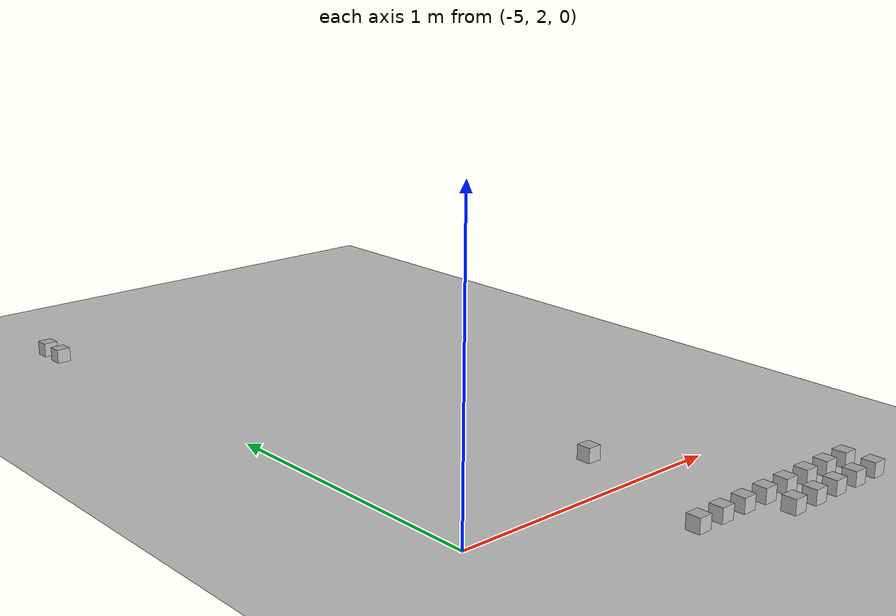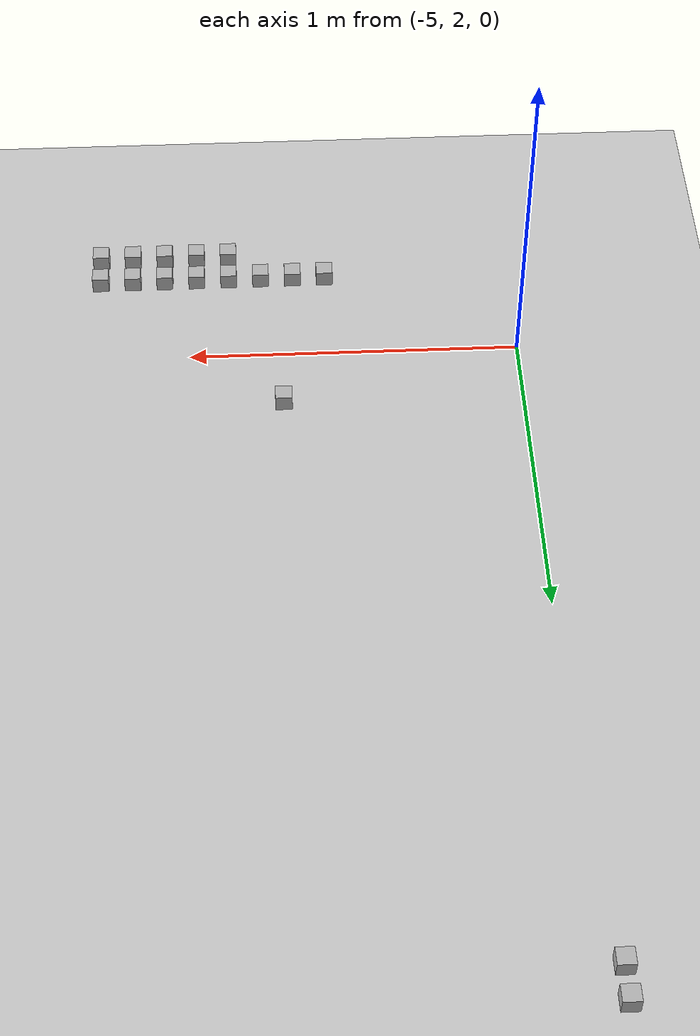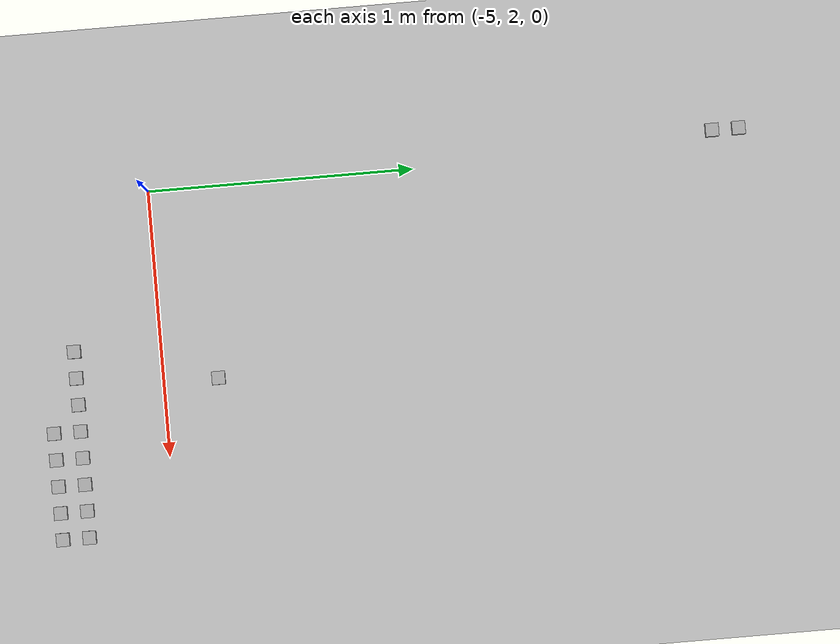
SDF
<sdf version="1.6">
 <world name="default">
  <model name="ground_plane">
   <static>1</static>
   <link name="link">
    <collision name="collision">
     <geometry><plane><normal>0 0 1</normal><size>100 100</size></plane></geometry>
     <surface><friction><ode><mu>100</mu><mu2>50</mu2></ode></friction></surface>
    </collision>
    <visual name="visual">
     <cast_shadows>0</cast_shadows>
     <geometry><plane><normal>0 0 1</normal><size>100 100</size></plane></geometry>
     <material>
      <script><uri>file://media/materials/scripts/gazebo.material</uri><name>Gazebo/Grey</name></script>
     </material>
    </visual>
   </link>
  </model>
  <model name="at19">
   <static>0</static>
   <link name="link">
    <inertial>
     <mass>0.01</mass>
     <inertia><ixx>4e-05</ixx><ixy>0</ixy><ixz>0</ixz><iyy>4e-05</iyy><iyz>0</iyz><izz>4e-05</izz></inertia>
    </inertial>
    <visual name="visual">
     <geometry><box><size>0.05 0.05 0.05</size></box></geometry>
     <material>
      <script>
       <uri>model://at0/materials/scripts</uri>
       <uri>model://at0/materials/textures</uri>
       <name>at0/Diffuse</name>
      </script>
     </material>
    </visual>
    <collision name="collision">
     <geometry><box><size>0.05 0.05 0.05</size></box></geometry>
     <surface><friction><ode><mu>0.8</mu><mu2>0.7</mu2></ode></friction></surface>
    </collision>
   </link>
   <pose>-4.12244 1.57302 0.025 0 -0 0</pose>
  </model>
  <model name="at20">
   <static>0</static>
   <link name="link">
    <inertial>
     <mass>0.01</mass>
     <inertia><ixx>4e-05</ixx><ixy>0</ixy><ixz>0</ixz><iyy>4e-05</iyy><iyz>0</iyz><izz>4e-05</izz></inertia>
    </inertial>
    <visual name="visual">
     <geometry><box><size>0.05 0.05 0.05</size></box></geometry>
     <material>
      <script>
       <uri>model://at0/materials/scripts</uri>
       <uri>model://at0/materials/textures</uri>
       <name>at0/Diffuse</name>
      </script>
     </material>
    </visual>
    <collision name="collision">
     <geometry><box><size>0.05 0.05 0.05</size></box></geometry>
     <surface><friction><ode><mu>0.8</mu><mu2>0.7</mu2></ode></friction></surface>
    </collision>
   </link>
   <pose>-4.02244 1.57302 0.025 0 -0 0</pose>
  </model>
  <model name="at21">
   <static>0</static>
   <link name="link">
    <inertial>
     <mass>0.01</mass>
     <inertia><ixx>4e-05</ixx><ixy>0</ixy><ixz>0</ixz><iyy>4e-05</iyy><iyz>0</iyz><izz>4e-05</izz></inertia>
    </inertial>
    <visual name="visual">
     <geometry><box><size>0.05 0.05 0.05</size></box></geometry>
     <material>
      <script>
       <uri>model://at0/materials/scripts</uri>
       <uri>model://at0/materials/textures</uri>
       <name>at0/Diffuse</name>
      </script>
     </material>
    </visual>
    <collision name="collision">
     <geometry><box><size>0.05 0.05 0.05</size></box></geometry>
     <surface><friction><ode><mu>0.8</mu><mu2>0.7</mu2></ode></friction></surface>
    </collision>
   </link>
   <pose>-3.92244 1.57302 0.025 0 -0 0</pose>
  </model>
  <model name="at22">
   <static>0</static>
   <link name="link">
    <inertial>
     <mass>0.01</mass>
     <inertia><ixx>4e-05</ixx><ixy>0</ixy><ixz>0</ixz><iyy>4e-05</iyy><iyz>0</iyz><izz>4e-05</izz></inertia>
    </inertial>
    <visual name="visual">
     <geometry><box><size>0.05 0.05 0.05</size></box></geometry>
     <material>
      <script>
       <uri>model://at0/materials/scripts</uri>
       <uri>model://at0/materials/textures</uri>
       <name>at0/Diffuse</name>
      </script>
     </material>
    </visual>
    <collision name="collision">
     <geometry><box><size>0.05 0.05 0.05</size></box></geometry>
     <surface><friction><ode><mu>0.8</mu><mu2>0.7</mu2></ode></friction></surface>
    </collision>
   </link>
   <pose>-3.82244 1.57302 0.025 0 -0 0</pose>
  </model>
  <model name="at23">
   <static>0</static>
   <link name="link">
    <inertial>
     <mass>0.01</mass>
     <inertia><ixx>4e-05</ixx><ixy>0</ixy><ixz>0</ixz><iyy>4e-05</iyy><iyz>0</iyz><izz>4e-05</izz></inertia>
    </inertial>
    <visual name="visual">
     <geometry><box><size>0.05 0.05 0.05</size></box></geometry>
     <material>
      <script>
       <uri>model://at0/materials/scripts</uri>
       <uri>model://at0/materials/textures</uri>
       <name>at0/Diffuse</name>
      </script>
     </material>
    </visual>
    <collision name="collision">
     <geometry><box><size>0.05 0.05 0.05</size></box></geometry>
     <surface><friction><ode><mu>0.8</mu><mu2>0.7</mu2></ode></friction></surface>
    </collision>
   </link>
   <pose>-3.72244 1.57302 0.025 0 -0 0</pose>
  </model>
  <model name="at24">
   <static>0</static>
   <link name="link">
    <inertial>
     <mass>0.01</mass>
     <inertia><ixx>4e-05</ixx><ixy>0</ixy><ixz>0</ixz><iyy>4e-05</iyy><iyz>0</iyz><izz>4e-05</izz></inertia>
    </inertial>
    <visual name="visual">
     <geometry><box><size>0.05 0.05 0.05</size></box></geometry>
     <material>
      <script>
       <uri>model://at0/materials/scripts</uri>
       <uri>model://at0/materials/textures</uri>
       <name>at0/Diffuse</name>
      </script>
     </material>
    </visual>
    <collision name="collision">
     <geometry><box><size>0.05 0.05 0.05</size></box></geometry>
     <surface><friction><ode><mu>0.8</mu><mu2>0.7</mu2></ode></friction></surface>
    </collision>
   </link>
   <pose>-4.42244 1.67302 0.025 0 -0 0</pose>
  </model>
  <model name="at25">
   <static>0</static>
   <link name="link">
    <inertial>
     <mass>0.01</mass>
     <inertia><ixx>4e-05</ixx><ixy>0</ixy><ixz>0</ixz><iyy>4e-05</iyy><iyz>0</iyz><izz>4e-05</izz></inertia>
    </inertial>
    <visual name="visual">
     <geometry><box><size>0.05 0.05 0.05</size></box></geometry>
     <material>
      <script>
       <uri>model://at0/materials/scripts</uri>
       <uri>model://at0/materials/textures</uri>
       <name>at0/Diffuse</name>
      </script>
     </material>
    </visual>
    <collision name="collision">
     <geometry><box><size>0.05 0.05 0.05</size></box></geometry>
     <surface><friction><ode><mu>0.8</mu><mu2>0.7</mu2></ode></friction></surface>
    </collision>
   </link>
   <pose>-4.32244 1.67302 0.025 0 -0 0</pose>
  </model>
  <model name="at26">
   <static>0</static>
   <link name="link">
    <inertial>
     <mass>0.01</mass>
     <inertia><ixx>4e-05</ixx><ixy>0</ixy><ixz>0</ixz><iyy>4e-05</iyy><iyz>0</iyz><izz>4e-05</izz></inertia>
    </inertial>
    <visual name="visual">
     <geometry><box><size>0.05 0.05 0.05</size></box></geometry>
     <material>
      <script>
       <uri>model://at0/materials/scripts</uri>
       <uri>model://at0/materials/textures</uri>
       <name>at0/Diffuse</name>
      </script>
     </material>
    </visual>
    <collision name="collision">
     <geometry><box><size>0.05 0.05 0.05</size></box></geometry>
     <surface><friction><ode><mu>0.8</mu><mu2>0.7</mu2></ode></friction></surface>
    </collision>
   </link>
   <pose>-4.22244 1.67302 0.025 0 -0 0</pose>
  </model>
  <model name="at27">
   <static>0</static>
   <link name="link">
    <inertial>
     <mass>0.01</mass>
     <inertia><ixx>4e-05</ixx><ixy>0</ixy><ixz>0</ixz><iyy>4e-05</iyy><iyz>0</iyz><izz>4e-05</izz></inertia>
    </inertial>
    <visual name="visual">
     <geometry><box><size>0.05 0.05 0.05</size></box></geometry>
     <material>
      <script>
       <uri>model://at0/materials/scripts</uri>
       <uri>model://at0/materials/textures</uri>
       <name>at0/Diffuse</name>
      </script>
     </material>
    </visual>
    <collision name="collision">
     <geometry><box><size>0.05 0.05 0.05</size></box></geometry>
     <surface><friction><ode><mu>0.8</mu><mu2>0.7</mu2></ode></friction></surface>
    </collision>
   </link>
   <pose>-4.12244 1.67302 0.025 0 -0 0</pose>
  </model>
  <model name="at28">
   <static>0</static>
   <link name="link">
    <inertial>
     <mass>0.01</mass>
     <inertia><ixx>4e-05</ixx><ixy>0</ixy><ixz>0</ixz><iyy>4e-05</iyy><iyz>0</iyz><izz>4e-05</izz></inertia>
    </inertial>
    <visual name="visual">
     <geometry><box><size>0.05 0.05 0.05</size></box></geometry>
     <material>
      <script>
       <uri>model://at0/materials/scripts</uri>
       <uri>model://at0/materials/textures</uri>
       <name>at0/Diffuse</name>
      </script>
     </material>
    </visual>
    <collision name="collision">
     <geometry><box><size>0.05 0.05 0.05</size></box></geometry>
     <surface><friction><ode><mu>0.8</mu><mu2>0.7</mu2></ode></friction></surface>
    </collision>
   </link>
   <pose>-4.02244 1.67302 0.025 0 -0 0</pose>
  </model>
  <model name="at29">
   <static>0</static>
   <link name="link">
    <inertial>
     <mass>0.01</mass>
     <inertia><ixx>4e-05</ixx><ixy>0</ixy><ixz>0</ixz><iyy>4e-05</iyy><iyz>0</iyz><izz>4e-05</izz></inertia>
    </inertial>
    <visual name="visual">
     <geometry><box><size>0.05 0.05 0.05</size></box></geometry>
     <material>
      <script>
       <uri>model://at0/materials/scripts</uri>
       <uri>model://at0/materials/textures</uri>
       <name>at0/Diffuse</name>
      </script>
     </material>
    </visual>
    <collision name="collision">
     <geometry><box><size>0.05 0.05 0.05</size></box></geometry>
     <surface><friction><ode><mu>0.8</mu><mu2>0.7</mu2></ode></friction></surface>
    </collision>
   </link>
   <pose>-3.92244 1.67302 0.025 0 -0 0</pose>
  </model>
  <model name="at30">
   <static>0</static>
   <link name="link">
    <inertial>
     <mass>0.01</mass>
     <inertia><ixx>4e-05</ixx><ixy>0</ixy><ixz>0</ixz><iyy>4e-05</iyy><iyz>0</iyz><izz>4e-05</izz></inertia>
    </inertial>
    <visual name="visual">
     <geometry><box><size>0.05 0.05 0.05</size></box></geometry>
     <material>
      <script>
       <uri>model://at0/materials/scripts</uri>
       <uri>model://at0/materials/textures</uri>
       <name>at0/Diffuse</name>
      </script>
     </material>
    </visual>
    <collision name="collision">
     <geometry><box><size>0.05 0.05 0.05</size></box></geometry>
     <surface><friction><ode><mu>0.8</mu><mu2>0.7</mu2></ode></friction></surface>
    </collision>
   </link>
   <pose>-3.82244 1.67302 0.025 0 -0 0</pose>
  </model>
  <model name="at31">
   <static>0</static>
   <link name="link">
    <inertial>
     <mass>0.01</mass>
     <inertia><ixx>4e-05</ixx><ixy>0</ixy><ixz>0</ixz><iyy>4e-05</iyy><iyz>0</iyz><izz>4e-05</izz></inertia>
    </inertial>
    <visual name="visual">
     <geometry><box><size>0.05 0.05 0.05</size></box></geometry>
     <material>
      <script>
       <uri>model://at0/materials/scripts</uri>
       <uri>model://at0/materials/textures</uri>
       <name>at0/Diffuse</name>
      </script>
     </material>
    </visual>
    <collision name="collision">
     <geometry><box><size>0.05 0.05 0.05</size></box></geometry>
     <surface><friction><ode><mu>0.8</mu><mu2>0.7</mu2></ode></friction></surface>
    </collision>
   </link>
   <pose>-3.72244 1.67302 0.025 0 -0 0</pose>
  </model>
  <model name="at59">
   <static>0</static>
   <link name="link">
    <inertial>
     <mass>0.01</mass>
     <inertia><ixx>4e-05</ixx><ixy>0</ixy><ixz>0</ixz><iyy>4e-05</iyy><iyz>0</iyz><izz>4e-05</izz></inertia>
    </inertial>
    <visual name="visual">
     <geometry><box><size>0.05 0.05 0.05</size></box></geometry>
     <material>
      <script>
       <uri>model://at0/materials/scripts</uri>
       <uri>model://at0/materials/textures</uri>
       <name>at0/Diffuse</name>
      </script>
     </material>
    </visual>
    <collision name="collision">
     <geometry><box><size>0.05 0.05 0.05</size></box></geometry>
     <surface><friction><ode><mu>0.8</mu><mu2>0.7</mu2></ode></friction></surface>
    </collision>
   </link>
   <pose>-5.05142 4.13183 0.025 0 -0 0</pose>
  </model>
  <model name="at63">
   <static>0</static>
   <link name="link">
    <inertial>
     <mass>0.01</mass>
     <inertia><ixx>4e-05</ixx><ixy>0</ixy><ixz>0</ixz><iyy>4e-05</iyy><iyz>0</iyz><izz>4e-05</izz></inertia>
    </inertial>
    <visual name="visual">
     <geometry><box><size>0.05 0.05 0.05</size></box></geometry>
     <material>
      <script>
       <uri>model://at0/materials/scripts</uri>
       <uri>model://at0/materials/textures</uri>
       <name>at0/Diffuse</name>
      </script>
     </material>
    </visual>
    <collision name="collision">
     <geometry><box><size>0.05 0.05 0.05</size></box></geometry>
     <surface><friction><ode><mu>0.8</mu><mu2>0.7</mu2></ode></friction></surface>
    </collision>
   </link>
   <pose>-5.05142 4.23183 0.025 0 -0 0</pose>
  </model>
  <model name="at126">
   <static>0</static>
   <link name="link">
    <inertial>
     <mass>0.01</mass>
     <inertia><ixx>4e-05</ixx><ixy>0</ixy><ixz>0</ixz><iyy>4e-05</iyy><iyz>0</iyz><izz>4e-05</izz></inertia>
    </inertial>
    <visual name="visual">
     <geometry><box><size>0.05 0.05 0.05</size></box></geometry>
     <material>
      <script>
       <uri>model://at0/materials/scripts</uri>
       <uri>model://at0/materials/textures</uri>
       <name>at0/Diffuse</name>
      </script>
     </material>
    </visual>
    <collision name="collision">
     <geometry><box><size>0.05 0.05 0.05</size></box></geometry>
     <surface><friction><ode><mu>0.8</mu><mu2>0.7</mu2></ode></friction></surface>
    </collision>
   </link>
   <pose>-4.27961 2.20562 0.025 0 -0 0</pose>
  </model>
 </world>
</sdf>
